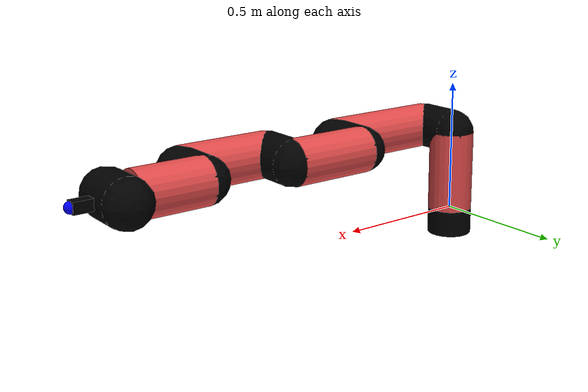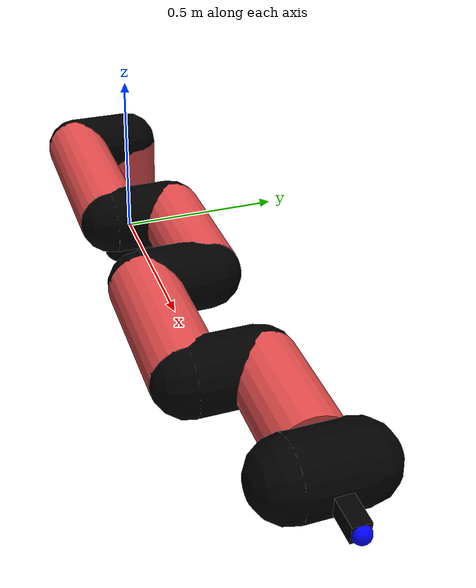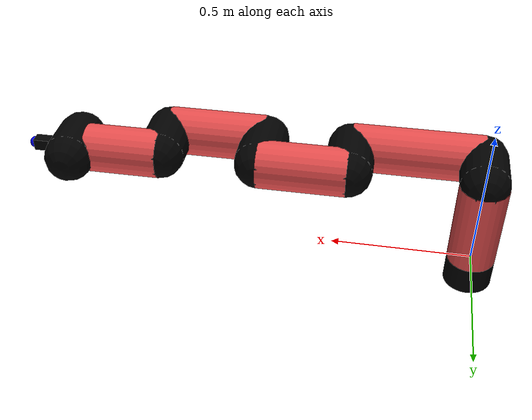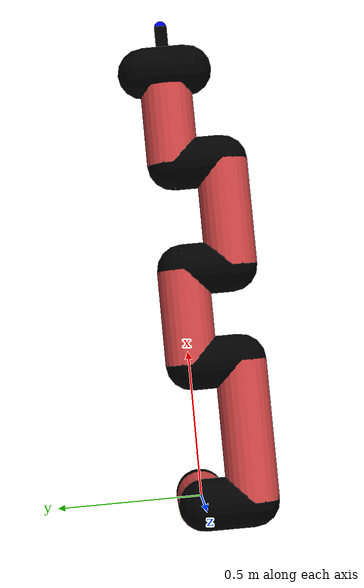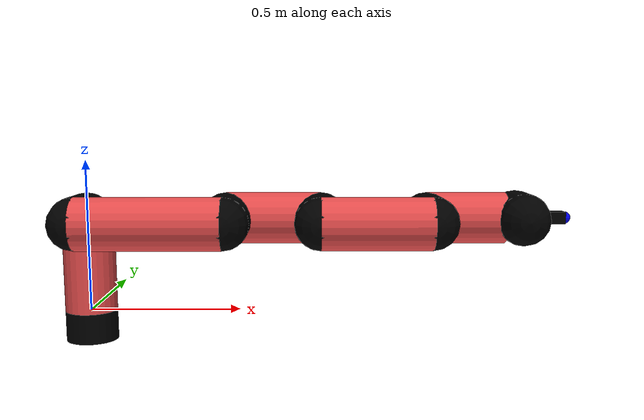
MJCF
<mujoco model="manipulator">
		<compiler angle="degree" coordinate="local" inertiafromgeom="auto" meshdir="meshes/"/>
		<option gravity="0 0 0" integrator="RK4" iterations="30" timestep="0.01"/>

		<default>
		<joint armature="1" limited="true" stiffness="10" damping="15" frictionloss="5.0"/>
		<geom conaffinity="1" condim="3" contype="1" friction=".5 .1 .1" margin="0.002"/>
		<motor ctrllimited="true"/>
		<position ctrllimited="true"/>
		</default>

		<asset>
		<texture builtin="gradient" height="100" rgb1="1.0 1.0 1.0" rgb2="1.0 1.0 1.0" type="skybox" width="100"/>
		<texture builtin="flat" height="32" name="arm_tex" rgb1="0.9 0.3 0.3" type="2d" width="32"/>
		<texture builtin="flat" height="32" name="gripper_tex" rgb1="0.0 0.0 0.0" type="cube" width="32"/>

		<material name="arm_mat" shininess="0.1" specular="0.1" texture="arm_tex"/>
		<material name="gripper_mat" shininess="1" specular="1" texture="gripper_tex"/>
		</asset>

		<worldbody>
		<light cutoff="45" diffuse=".8 .8 .8" dir="0 0.16 -1" directional="false" name="light" pos="0 -2.0 8.0" specular="0.3 0.3 0.3"/>

		<body name="base_link" pos="0 0 -0.1">
		<geom fromto="0 0 0 0 0 0.1" material="arm_mat" name="base_link" rgba="0.0 0.0 0.0 1" size="0.085" type="cylinder"/>
		</body>

		<body name="l1" pos="0 0 0">
<geom fromto="0 0 0 0 0 0.31" material="arm_mat" name="l1" rgba="0.9 0.3 0.3 1" size="0.085" type="cylinder"/>
<geom fromto="0 0 0.31 0 -0.16 0.31" material="arm_mat" name="l1_ex" rgba="0.0 0.0 0.0 1" size="0.085" type="capsule"/>
<joint axis="0 0 1" name="j1" pos="0 0 0" range="-90 90" damping="31.14" frictionloss="10.54"/>

<body name="l2" pos="0 -0.16 0.31">
<geom fromto="0 0 0 0.46 0 0" material="arm_mat" name="l2" rgba="0.9 0.3 0.3 1" size="0.085" type="cylinder"/>
<geom fromto="0.46 0 0 0.46 0.16 0" material="arm_mat" name="l2_ex" rgba="0.0 0.0 0.0 1" size="0.085" type="capsule"/>
<joint axis="0.0 1.0 0.0" name="j2" pos="0 0 0" range="-90 60" damping="27.78" frictionloss="9.49"/>

<body name="l3" pos="0.46 0.16 0">
<geom fromto="0 0 0 0.31 0 0" material="arm_mat" name="l3" rgba="0.9 0.3 0.3 1" size="0.085" type="cylinder"/>
<geom fromto="0.31 0 0 0.31 -0.16 0" material="arm_mat" name="l3_ex" rgba="0.0 0.0 0.0 1" size="0.085" type="capsule"/>
<joint axis="0.0 1.0 0.0" name="j3" pos="0 0 0" range="-30 60" damping="35.61" frictionloss="9.48"/>

<body name="l4" pos="0.31 -0.16 0">
<geom fromto="0 0 0 0.35 0 0" material="arm_mat" name="l4" rgba="0.9 0.3 0.3 1" size="0.085" type="cylinder"/>
<geom fromto="0.35 0 0 0.35 0.16 0" material="arm_mat" name="l4_ex" rgba="0.0 0.0 0.0 1" size="0.085" type="capsule"/>
<joint axis="0.0 1.0 0.0" name="j4" pos="0 0 0" range="-30 60" damping="37.07" frictionloss="8.71"/>

<body name="l5" pos="0.35 0.16 0">
<geom fromto="0 0 0 0.26 0 0" material="arm_mat" name="l5" rgba="0.9 0.3 0.3 1" size="0.085" type="cylinder"/>
<joint axis="0.0 1.0 0.0" name="j5" pos="0 0 0" range="-30 60" damping="33.62" frictionloss="7.69"/>

<body name="gripper" pos="0.26 0 0">
<geom fromto="0.05 -0.07 0 0.05 0.07 0" material="gripper_mat" name="gripper" rgba="0.0 0.0 0.0 1" size="0.085" type="capsule"/><joint axis="1 0 0" name="j6" pos="0 0 0" range="-90 90" damping="15" frictionloss="5.0"/><body name="finger" pos="0.1 0 0">
<geom fromto="0 0.0 0 0.1 0.0 0" material="gripper_mat" name="finger" rgba="0.0 0.0 0.0 1" size="0.020 0.06 0.06" type="box"/>
</body>
<site name="current" pos="0.2 0. 0.0" rgba="0. 0. 1.0 1" size="0.02" type="sphere"/>
</body>
</body>
</body>
</body>
</body>
</body>
</worldbody>
<actuator>
<motor ctrllimited="true" ctrlrange="-1.0 1.0" joint="j1" gear="87.02"/>
<motor ctrllimited="true" ctrlrange="-1.0 1.0" joint="j2" gear="80.89"/>
<motor ctrllimited="true" ctrlrange="-1.0 1.0" joint="j3" gear="77.97"/>
<motor ctrllimited="true" ctrlrange="-1.0 1.0" joint="j4" gear="89.22"/>
<motor ctrllimited="true" ctrlrange="-1.0 1.0" joint="j5" gear="80.29"/>
<motor ctrllimited="true" ctrlrange="-1.0 1.0" joint="j6" gear="80"/>
</actuator>
</mujoco>
